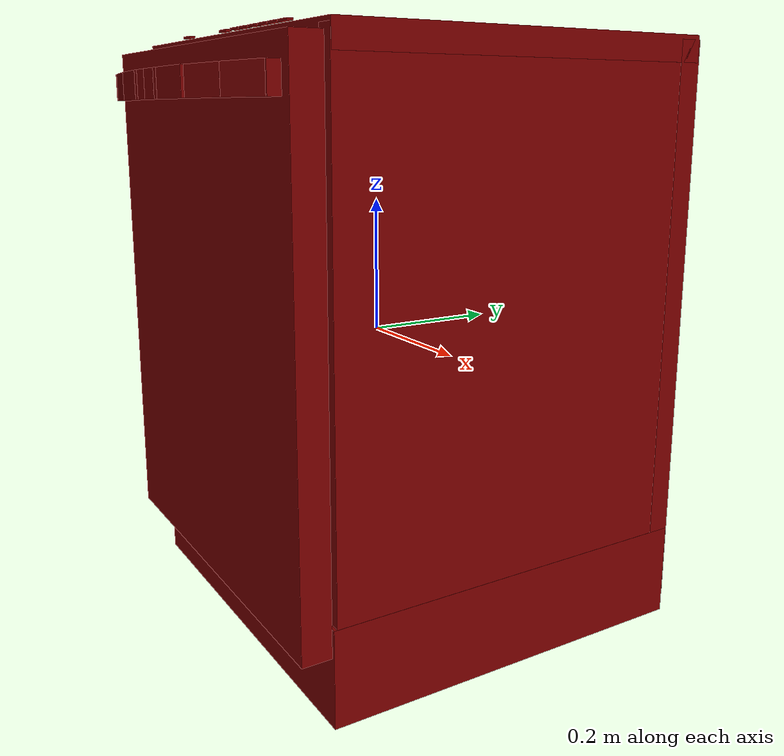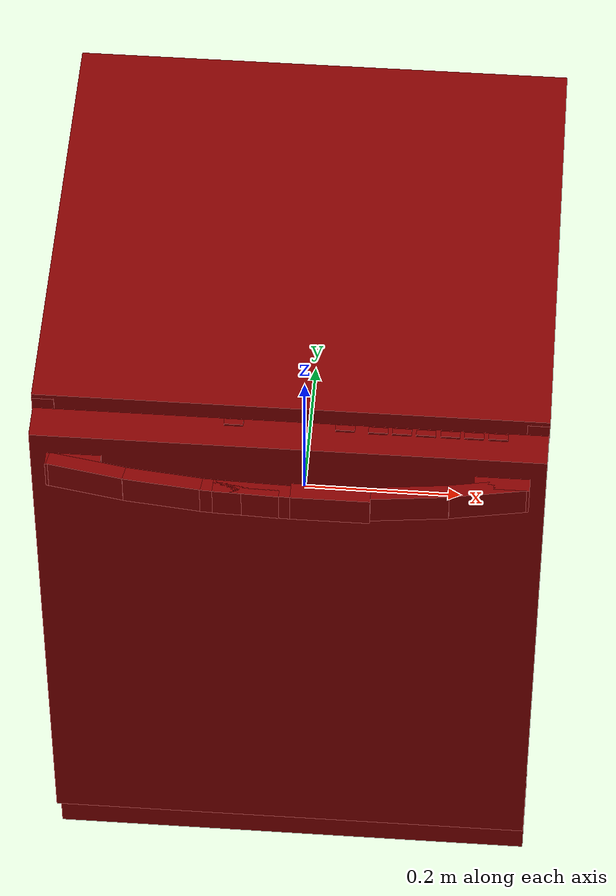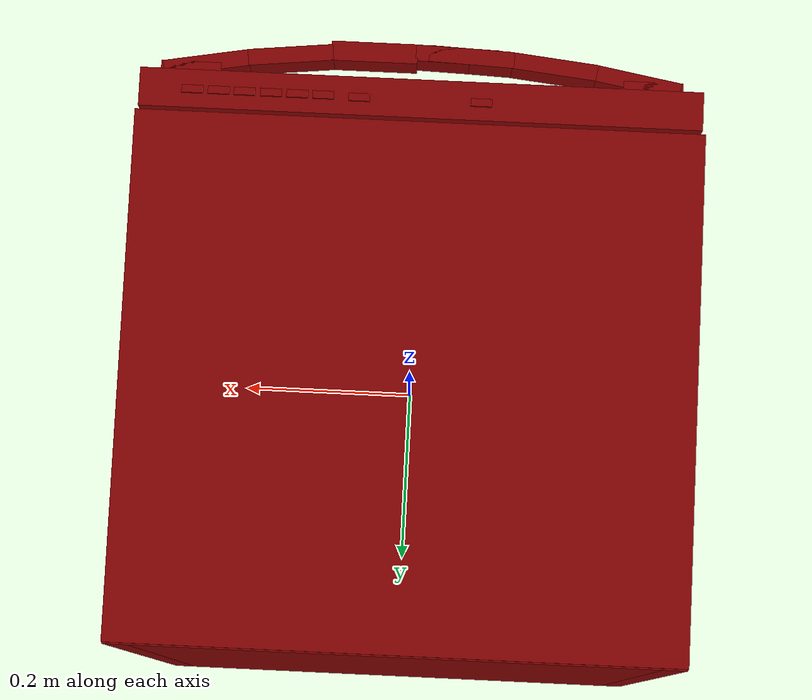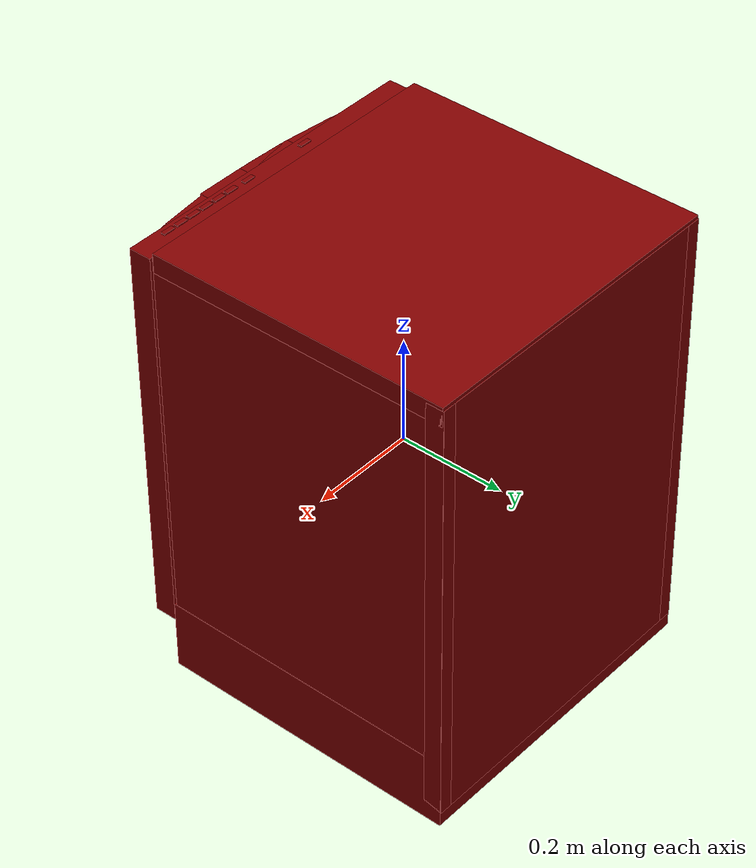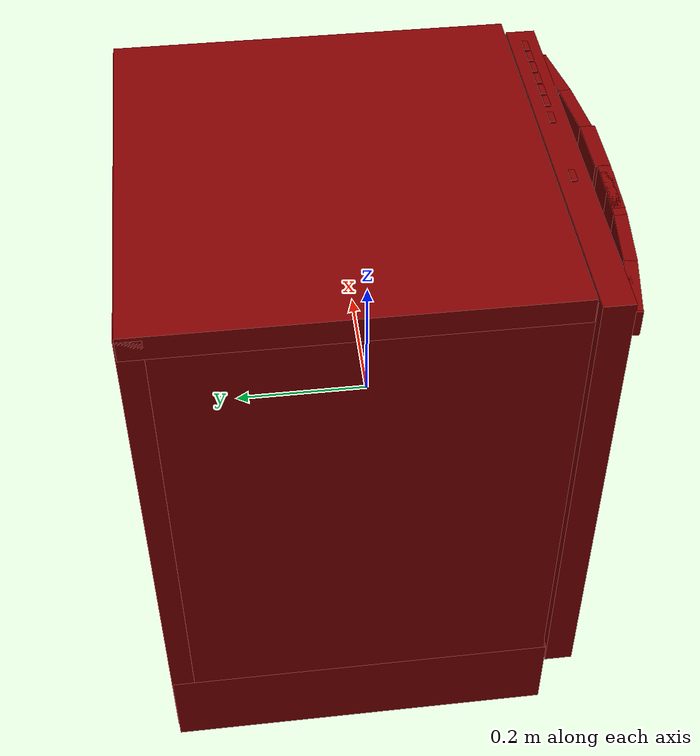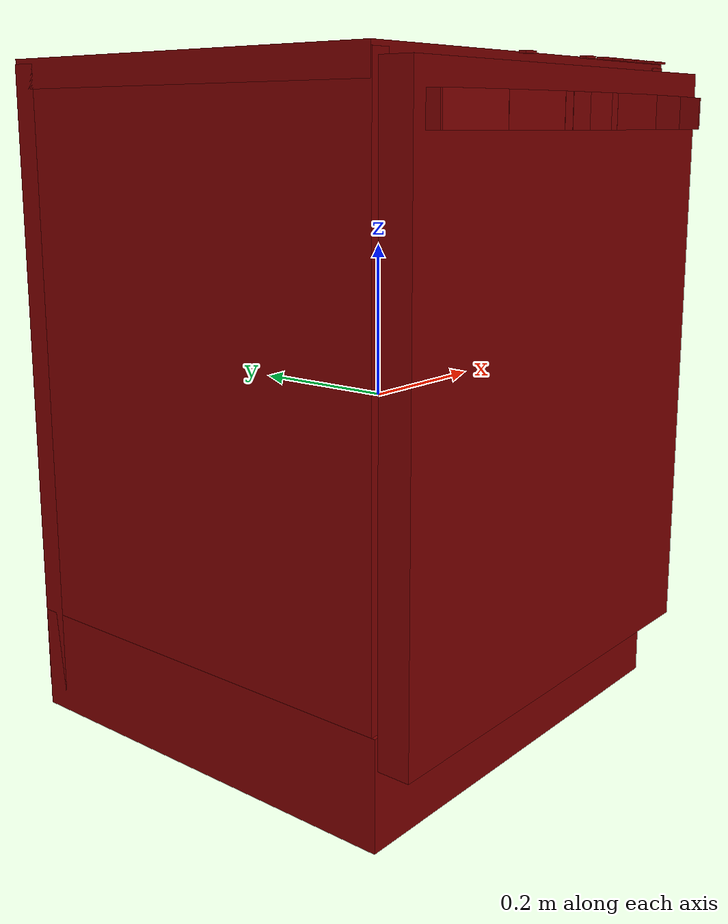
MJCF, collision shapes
<mujoco model="model">
  <compiler angle="radian"/>
  <asset>
    <mesh file="visuals/Body001.obj" name="Body001_vis"/>
    <mesh file="visuals/Button001.obj" name="Button001_vis"/>
    <mesh file="visuals/Button002.obj" name="Button002_vis"/>
    <mesh file="visuals/Button003.obj" name="Button003_vis"/>
    <mesh file="visuals/Button004.obj" name="Button004_vis"/>
    <mesh file="visuals/Button005.obj" name="Button005_vis"/>
    <mesh file="visuals/Button006.obj" name="Button006_vis"/>
    <mesh file="visuals/Button007.obj" name="Button007_vis"/>
    <mesh file="visuals/Button008.obj" name="Button008_vis"/>
    <mesh file="visuals/Container001.obj" name="Container001_vis"/>
    <mesh file="visuals/Container002.obj" name="Container002_vis"/>
    <mesh file="visuals/Door001.obj" name="Door001_vis"/>
    <mesh file="visuals/Handle001.obj" name="Handle001_vis"/>
    <texture file="visuals/T_BC001.png" name="Body001_material" type="2d"/>
    <material name="Body001_material" rgba="1 1 1 1.0" texture="Body001_material" shininess="0.4472135901451111" specular="4"/>
    <texture file="visuals/T_BC001.png" name="Container001_material" type="2d"/>
    <material name="Container001_material" rgba="1 1 1 1.0" texture="Container001_material" shininess="0.4472135901451111" specular="8"/>
    <texture file="visuals/T_BC001.png" name="Container002_material" type="2d"/>
    <material name="Container002_material" rgba="1 1 1 1.0" texture="Container002_material" shininess="0.4472135901451111" specular="8"/>
    <texture file="visuals/T_BC001.png" name="Door001_material" type="2d"/>
    <material name="Door001_material" rgba="1 1 1 1.0" texture="Door001_material" shininess="0.4472135901451111" specular="1"/>
    <texture file="visuals/T_BC001.png" name="Button001_material" type="2d"/>
    <material name="Button001_material" rgba="1 1 1 1.0" texture="Button001_material" shininess="0.4472135901451111" specular="0.3103448502657381"/>
    <texture file="visuals/T_BC001.png" name="Button002_material" type="2d"/>
    <material name="Button002_material" rgba="1 1 1 1.0" texture="Button002_material" shininess="0.4472135901451111" specular="0.3103448502657381"/>
    <texture file="visuals/T_BC001.png" name="Button003_material" type="2d"/>
    <material name="Button003_material" rgba="1 1 1 1.0" texture="Button003_material" shininess="0.4472135901451111" specular="0.3103448502657381"/>
    <texture file="visuals/T_BC001.png" name="Button004_material" type="2d"/>
    <material name="Button004_material" rgba="1 1 1 1.0" texture="Button004_material" shininess="0.4472135901451111" specular="0.3103448502657381"/>
    <texture file="visuals/T_BC001.png" name="Button005_material" type="2d"/>
    <material name="Button005_material" rgba="1 1 1 1.0" texture="Button005_material" shininess="0.4472135901451111" specular="0.3103448502657381"/>
    <texture file="visuals/T_BC001.png" name="Button006_material" type="2d"/>
    <material name="Button006_material" rgba="1 1 1 1.0" texture="Button006_material" shininess="0.4472135901451111" specular="0.3103448502657381"/>
    <texture file="visuals/T_BC001.png" name="Button007_material" type="2d"/>
    <material name="Button007_material" rgba="1 1 1 1.0" texture="Button007_material" shininess="0.4472135901451111" specular="0.3103448502657381"/>
    <texture file="visuals/T_BC001.png" name="Button008_material" type="2d"/>
    <material name="Button008_material" rgba="1 1 1 1.0" texture="Button008_material" shininess="0.4472135901451111" specular="0.3103448502657381"/>
    <texture file="visuals/T_BC001.png" name="Handle001_material" type="2d"/>
    <material name="Handle001_material" rgba="1 1 1 1.0" texture="Handle001_material" shininess="0.4472135901451111" specular="0.3103448502657381"/>
  </asset>
  <default>
    <default class="visual">
      <geom conaffinity="0" contype="0" group="1" type="mesh"/>
    </default>
    <default class="collision">
      <geom group="0" rgba="0.5 0 0 0.5"/>
    </default>
    <default class="spawn">
      <geom group="0" rgba="1 1 1 0.5" contype="0" conaffinity="0"/>
      <site group="0" rgba="1 1 1 0.5"/>
    </default>
    <default class="region">
      <geom group="1" conaffinity="0" contype="0" rgba="0 1 0 0"/>
    </default>
  </default>
  <worldbody>
    <body>
      <body name="object">
        <geom mesh="Body001_vis" type="mesh" solimp="0.998 0.998 0.001" solref="0.001 1" density="100" friction="0.95 0.3 0.1" class="visual" material="Body001_material"/>
        <geom class="collision" type="box" pos="0.269024 0.028172 0.062763" size="0.013690252788364887 0.24464596807956696 0.003919371869415045" quat="1.0 0.0 0.0 0.0"/>
        <geom class="collision" type="box" pos="0.269024 0.028172 -0.188452" size="0.013690252788364887 0.24464596807956696 0.0050508081912994385" quat="1.0 0.0 0.0 0.0"/>
        <geom class="collision" type="box" pos="-0.266407 0.028172 -0.188452" size="0.013690252788364887 0.24464596807956696 0.0050508081912994385" quat="1.0 0.0 0.0 0.0"/>
        <geom class="collision" type="box" pos="-0.266407 0.028172 0.062763" size="0.013690252788364887 0.24464596807956696 0.003919371869415045" quat="1.0 0.0 0.0 0.0"/>
        <geom class="collision" type="box" pos="-0.000000 0.045719 -0.362900" size="0.3060484230518341 0.2881716191768646 0.0687190368771553" quat="1.0 0.0 0.0 0.0"/>
        <geom class="collision" type="box" pos="-0.000000 0.048063 0.413480" size="0.3060484230518341 0.2847980260848999 0.01820780709385872" quat="1.0 0.0 0.0 0.0"/>
        <geom class="collision" type="box" pos="0.292583 0.048370 0.010449" size="0.013108369894325733 0.28617629408836365 0.41520828008651733" quat="1.0 0.0 0.0 0.0"/>
        <geom class="collision" type="box" pos="-0.000000 0.317587 0.010449" size="0.3060484230518341 0.016958776861429214 0.41520828008651733" quat="1.0 0.0 0.0 0.0"/>
        <geom class="collision" type="box" pos="-0.292940 0.048370 0.010449" size="0.013108369894325733 0.28617629408836365 0.41520828008651733" quat="1.0 0.0 0.0 0.0"/>
        <body name="Container001">
          <joint axis="0.0 -1.0 0.0" pos="0.000171 0.024958 0.124170" limited="true" name="Container001_joint" range="0.0 0.2" type="slide" damping="1" frictionloss="1" armature=".01" stiffness="0.05"/>
          <geom mesh="Container001_vis" type="mesh" solimp="0.998 0.998 0.001" solref="0.001 1" density="100" friction="0.95 0.3 0.1" class="visual" material="Container001_material"/>
          <geom class="collision" type="box" pos="0.000730 -0.214594 0.121777" size="0.2716885209083557 0.009994168765842915 0.05192488059401512" quat="1.0 0.0 0.0 0.0"/>
          <geom class="collision" type="box" pos="0.269984 0.024361 0.121777" size="0.008622566238045692 0.23622630536556244 0.051924873143434525" quat="1.0 0.0 0.0 0.0"/>
          <geom class="collision" type="box" pos="-0.269797 0.024361 0.121777" size="0.008622564375400543 0.23622627556324005 0.05192486569285393" quat="1.0 0.0 0.0 0.0"/>
          <geom class="collision" type="box" pos="0.000730 0.024027 0.077685" size="0.2716883420944214 0.2365603893995285 0.007833192124962807" quat="1.0 0.0 0.0 0.0"/>
          <geom class="collision" type="box" pos="0.000730 0.250594 0.121777" size="0.2716882824897766 0.009994161315262318 0.051924850791692734" quat="1.0 0.0 0.0 0.0"/>
        </body>
        <body name="Container002">
          <joint axis="0.0 -1.0 0.0" pos="0.001224 0.024958 -0.127241" limited="true" name="Container002_joint" range="0.0 0.2" type="slide" damping="1" frictionloss="1" armature=".01" stiffness="0.05"/>
          <geom mesh="Container002_vis" type="mesh" solimp="0.998 0.998 0.001" solref="0.001 1" density="100" friction="0.95 0.3 0.1" class="visual" material="Container002_material"/>
          <geom class="collision" type="box" pos="0.000730 0.250594 -0.126846" size="0.2716888189315796 0.00999417807906866 0.051924917846918106" quat="1.0 0.0 0.0 0.0"/>
          <geom class="collision" type="box" pos="0.000730 0.024027 -0.170937" size="0.2716887593269348 0.23656059801578522 0.007833198644220829" quat="1.0 0.0 0.0 0.0"/>
          <geom class="collision" type="box" pos="-0.269797 0.024361 -0.126846" size="0.00862257368862629 0.236226424574852 0.05192490294575691" quat="1.0 0.0 0.0 0.0"/>
          <geom class="collision" type="box" pos="0.269984 0.024361 -0.126846" size="0.00862257182598114 0.2362263947725296 0.051924895495176315" quat="1.0 0.0 0.0 0.0"/>
          <geom class="collision" type="box" pos="0.000730 -0.214594 -0.126846" size="0.2716885805130005 0.009994170628488064 0.05192488804459572" quat="1.0 0.0 0.0 0.0"/>
        </body>
        <body name="Door001">
          <joint axis="1.0 0.0 0.0" pos="0.000536 -0.244565 -0.330048" limited="true" name="Door001_joint" range="0.0 0.5235987755982988" type="hinge" damping="1" frictionloss="1" armature=".01" stiffness="3" springref="-2"/>
          <geom mesh="Door001_vis" type="mesh" solimp="0.998 0.998 0.001" solref="0.001 1" density="100" friction="0.95 0.3 0.1" class="visual" material="Door001_material"/>
          <geom class="collision" type="box" pos="0.000239 -0.265790 0.042625" size="0.3045286536216736 0.021109793335199356 0.3743281960487366" quat="1.0 0.0 0.0 0.0"/>
          <body name="Button001">
            <joint axis="0.0 0.0 -1.0" pos="-0.064625 -0.260999 0.428408" limited="true" name="Button001_joint" range="0.0 0.001" type="slide" damping="1" frictionloss="1" armature=".01" stiffness="1" springref="-0.4"/>
            <geom mesh="Button001_vis" type="mesh" solimp="0.998 0.998 0.001" solref="0.001 1" density="100" friction="0.95 0.3 0.1" class="visual" material="Button001_material"/>
            <geom class="collision" type="box" pos="-0.064566 -0.260934 0.429473" size="0.011428618803620338 0.004177938215434551 0.0014292823616415262" quat="1.0 0.0 0.0 0.0"/>
          </body>
          <body name="Button002">
            <joint axis="0.0 0.0 -1.0" pos="0.066600 -0.261046 0.428408" limited="true" name="Button002_joint" range="0.0 0.001" type="slide" damping="1" frictionloss="1" armature=".01" stiffness="1" springref="-0.4"/>
            <geom mesh="Button002_vis" type="mesh" solimp="0.998 0.998 0.001" solref="0.001 1" density="100" friction="0.95 0.3 0.1" class="visual" material="Button002_material"/>
            <geom class="collision" type="box" pos="0.066584 -0.260934 0.429473" size="0.011428618803620338 0.004177938215434551 0.0014292823616415262" quat="1.0 0.0 0.0 0.0"/>
          </body>
          <body name="Button003">
            <joint axis="0.0 0.0 -1.0" pos="0.105171 -0.261846 0.428408" limited="true" name="Button003_joint" range="0.0 0.001" type="slide" damping="1" frictionloss="1" armature=".01" stiffness="1" springref="-0.4"/>
            <geom mesh="Button003_vis" type="mesh" solimp="0.998 0.998 0.001" solref="0.001 1" density="100" friction="0.95 0.3 0.1" class="visual" material="Button003_material"/>
            <geom class="collision" type="box" pos="0.105288 -0.261795 0.429473" size="0.011428618803620338 0.004177938215434551 0.0014292823616415262" quat="1.0 0.0 0.0 0.0"/>
          </body>
          <body name="Button004">
            <joint axis="0.0 0.0 -1.0" pos="0.133308 -0.261729 0.428408" limited="true" name="Button004_joint" range="0.0 0.001" type="slide" damping="1" frictionloss="1" armature=".01" stiffness="1" springref="-0.4"/>
            <geom mesh="Button004_vis" type="mesh" solimp="0.998 0.998 0.001" solref="0.001 1" density="100" friction="0.95 0.3 0.1" class="visual" material="Button004_material"/>
            <geom class="collision" type="box" pos="0.133285 -0.261795 0.429473" size="0.011428618803620338 0.004177938215434551 0.0014292823616415262" quat="1.0 0.0 0.0 0.0"/>
          </body>
          <body name="Button005">
            <joint axis="0.0 0.0 -1.0" pos="0.161382 -0.261729 0.428408" limited="true" name="Button005_joint" range="0.0 0.001" type="slide" damping="1" frictionloss="1" armature=".01" stiffness="1" springref="-0.4"/>
            <geom mesh="Button005_vis" type="mesh" solimp="0.998 0.998 0.001" solref="0.001 1" density="100" friction="0.95 0.3 0.1" class="visual" material="Button005_material"/>
            <geom class="collision" type="box" pos="0.161336 -0.261795 0.429473" size="0.011428618803620338 0.004177938215434551 0.0014292823616415262" quat="1.0 0.0 0.0 0.0"/>
          </body>
          <body name="Button006">
            <joint axis="0.0 0.0 -1.0" pos="0.189922 -0.261729 0.428408" limited="true" name="Button006_joint" range="0.0 0.001" type="slide" damping="1" frictionloss="1" armature=".01" stiffness="1" springref="-0.4"/>
            <geom mesh="Button006_vis" type="mesh" solimp="0.998 0.998 0.001" solref="0.001 1" density="100" friction="0.95 0.3 0.1" class="visual" material="Button006_material"/>
            <geom class="collision" type="box" pos="0.189925 -0.261795 0.429473" size="0.011428618803620338 0.004177938215434551 0.0014292823616415262" quat="1.0 0.0 0.0 0.0"/>
          </body>
          <body name="Button007">
            <joint axis="0.0 0.0 -1.0" pos="0.217665 -0.261729 0.428408" limited="true" name="Button007_joint" range="0.0 0.001" type="slide" damping="1" frictionloss="1" armature=".01" stiffness="1" springref="-0.4"/>
            <geom mesh="Button007_vis" type="mesh" solimp="0.998 0.998 0.001" solref="0.001 1" density="100" friction="0.95 0.3 0.1" class="visual" material="Button007_material"/>
            <geom class="collision" type="box" pos="0.217761 -0.261795 0.429473" size="0.011428618803620338 0.004177938215434551 0.0014292823616415262" quat="1.0 0.0 0.0 0.0"/>
          </body>
          <body name="Button008">
            <joint axis="0.0 0.0 -1.0" pos="0.246138 -0.261729 0.428408" limited="true" name="Button008_joint" range="0.0 0.001" type="slide" damping="1" frictionloss="1" armature=".01" stiffness="1" springref="-0.4"/>
            <geom mesh="Button008_vis" type="mesh" solimp="0.998 0.998 0.001" solref="0.001 1" density="100" friction="0.95 0.3 0.1" class="visual" material="Button008_material"/>
            <geom class="collision" type="box" pos="0.246081 -0.261795 0.429473" size="0.011428618803620338 0.004177938215434551 0.0014292823616415262" quat="1.0 0.0 0.0 0.0"/>
          </body>
          <body name="Handle001">
            <geom mesh="Handle001_vis" type="mesh" solimp="0.998 0.998 0.001" solref="0.001 1" density="100" friction="0.95 0.3 0.1" class="visual" material="Handle001_material"/>
            <geom class="collision" type="box" pos="-0.236231 -0.303337 0.366243" size="0.04660938307642937 0.008954321034252644 0.019917838275432587" quat="7.52008944004956e-08 0.9960660338401794 -0.08861380070447922 -6.690156872934949e-09"/>
            <geom class="collision" type="box" pos="-0.144438 -0.316742 0.366243" size="0.04660938307642937 0.008954321034252644 0.019917838275432587" quat="7.538834267961647e-08 0.9985488653182983 -0.053853075951337814 -4.06579481193603e-09"/>
            <geom class="collision" type="box" pos="-0.052903 -0.323731 0.366243" size="0.04660938307642937 0.008954321034252644 0.019917838275432587" quat="7.54827382820622e-08 0.9997991323471069 -0.02004178985953331 -1.5131126351874968e-09"/>
            <geom class="collision" type="box" pos="-0.252431 -0.288987 0.366243" size="0.03264765068888664 0.015286942012608051 0.019917838275432587" quat="7.549790126404332e-08 1.0 0.0 0.0"/>
            <geom class="collision" type="box" pos="-0.038203 -0.324190 0.366243" size="0.04660938307642937 0.008954321034252644 0.019917838275432587" quat="0.9998915195465088 0.0 0.0 -0.014729318208992481"/>
            <geom class="collision" type="box" pos="0.053693 -0.323731 0.366243" size="0.04693078622221947 0.010815020650625229 0.019917838275432587" quat="1.0 0.0 0.0 0.0"/>
            <geom class="collision" type="box" pos="0.145229 -0.316742 0.366243" size="0.04660938307642937 0.008954321034252644 0.019917838275432587" quat="0.9985488653182983 0.0 0.0 0.053853072226047516"/>
            <geom class="collision" type="box" pos="0.237021 -0.303337 0.366243" size="0.04660938307642937 0.008954321034252644 0.019917838275432587" quat="0.9960660338401794 0.0 0.0 0.08861380070447922"/>
            <geom class="collision" type="box" pos="0.253222 -0.288987 0.366243" size="0.03264765068888664 0.015286942012608051 0.019917838275432587" quat="1.0 0.0 0.0 0.0"/>
          </body>
        </body>
        <geom class="region" name="reg_main" type="box" pos="0.0006245000000000001 0.020425499999999985 -0.001476000000000005" size="0.30171250000000005 0.3067665 0.43021200000000004"/>
        <geom class="region" name="reg_int" type="box" pos="0.0006259999999999877 0.03445350000000001 0.055903499999999995" size="0.278601 0.2730205 0.3460165"/>
      </body>
    </body>
  </worldbody>
  <actuator>
    <motor name="Container001_joint_actuator" joint="Container001_joint" gear="10"/>
    <motor name="Container002_joint_actuator" joint="Container002_joint" gear="10"/>
    <motor name="Door001_joint_actuator" joint="Door001_joint" gear="50"/>
    <motor name="Button001_joint_actuator" joint="Button001_joint" gear="0.5"/>
    <motor name="Button002_joint_actuator" joint="Button002_joint" gear="0.5"/>
    <motor name="Button003_joint_actuator" joint="Button003_joint" gear="0.5"/>
    <motor name="Button004_joint_actuator" joint="Button004_joint" gear="0.5"/>
    <motor name="Button005_joint_actuator" joint="Button005_joint" gear="0.5"/>
    <motor name="Button006_joint_actuator" joint="Button006_joint" gear="0.5"/>
    <motor name="Button007_joint_actuator" joint="Button007_joint" gear="0.5"/>
    <motor name="Button008_joint_actuator" joint="Button008_joint" gear="0.5"/>
  </actuator>
</mujoco>
